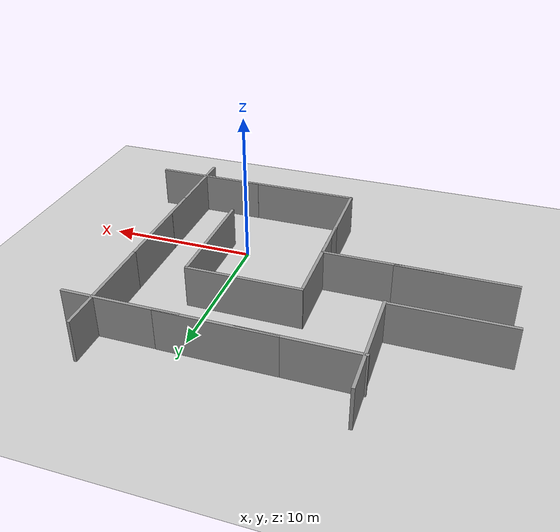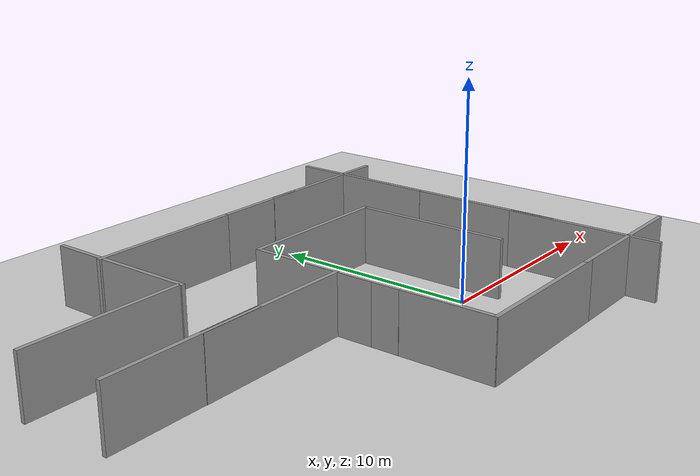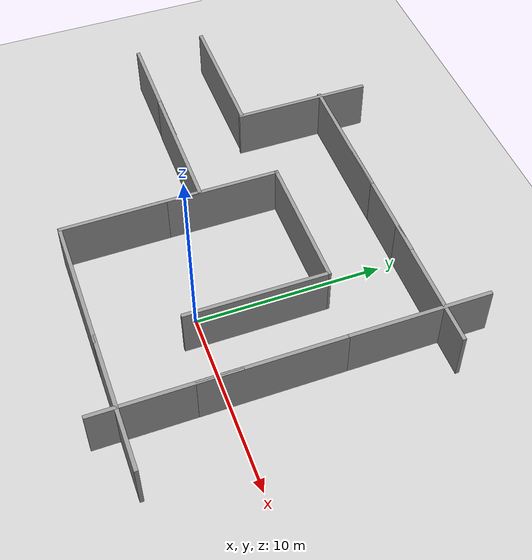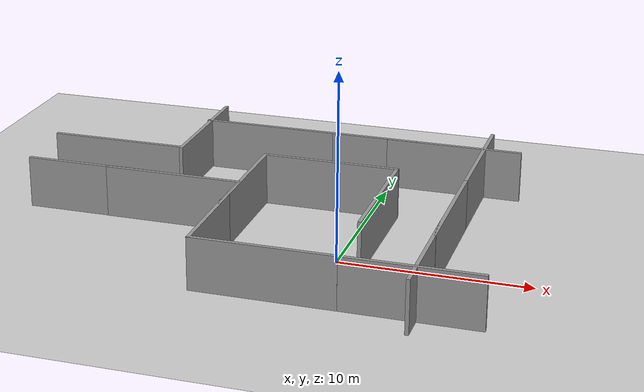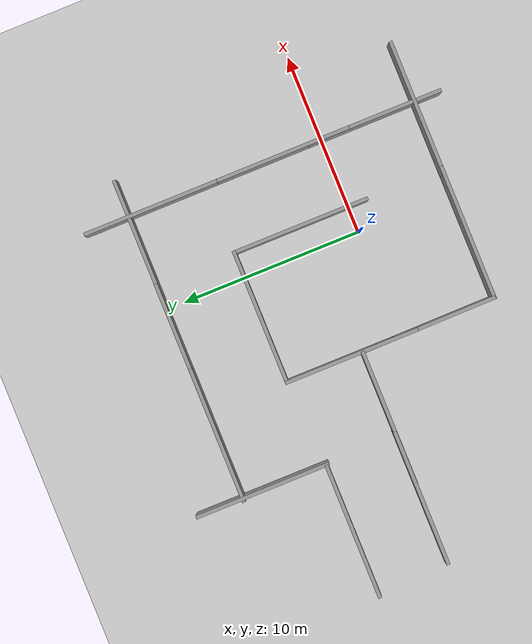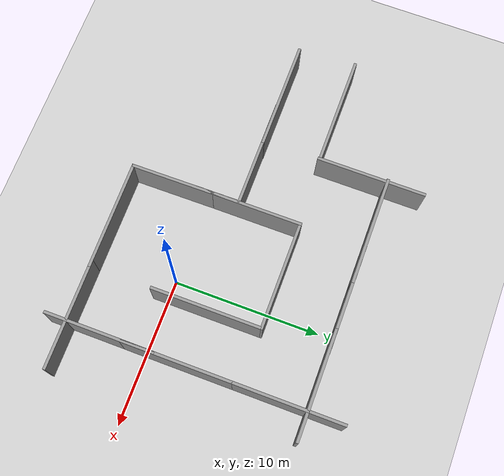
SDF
<sdf version='1.10'>
  <world name='empty'>
    <physics name='1ms' type='ignored'>
      <max_step_size>0.001</max_step_size>
      <real_time_factor>1</real_time_factor>
      <real_time_update_rate>1000</real_time_update_rate>
    </physics>
    <plugin name='gz::sim::systems::Physics' filename='gz-sim-physics-system'/>
    <plugin name='gz::sim::systems::UserCommands' filename='gz-sim-user-commands-system'/>
    <plugin name='gz::sim::systems::SceneBroadcaster' filename='gz-sim-scene-broadcaster-system'/>
    <plugin name='gz::sim::systems::Contact' filename='gz-sim-contact-system'/>
    <gravity>0 0 -9.8000000000000007</gravity>
    <magnetic_field>5.5644999999999998e-06 2.2875799999999999e-05 -4.2388400000000002e-05</magnetic_field>
    <atmosphere type='adiabatic'/>
    <scene>
      <ambient>0.400000006 0.400000006 0.400000006 1</ambient>
      <background>0.699999988 0.699999988 0.699999988 1</background>
      <shadows>true</shadows>
    </scene>
    <model name='ground_plane'>
      <static>true</static>
      <link name='link'>
        <collision name='collision'>
          <geometry>
            <plane>
              <normal>0 0 1</normal>
              <size>100 100</size>
            </plane>
          </geometry>
          <surface>
            <friction>
              <ode/>
            </friction>
            <bounce/>
            <contact/>
          </surface>
        </collision>
        <visual name='visual'>
          <geometry>
            <plane>
              <normal>0 0 1</normal>
              <size>100 100</size>
            </plane>
          </geometry>
          <material>
            <ambient>0.800000012 0.800000012 0.800000012 1</ambient>
            <diffuse>0.800000012 0.800000012 0.800000012 1</diffuse>
            <specular>0.800000012 0.800000012 0.800000012 1</specular>
          </material>
        </visual>
        <pose>0 0 0 0 0 0</pose>
        <inertial>
          <pose>0 0 0 0 0 0</pose>
          <mass>1</mass>
          <inertia>
            <ixx>1</ixx>
            <ixy>0</ixy>
            <ixz>0</ixz>
            <iyy>1</iyy>
            <iyz>0</iyz>
            <izz>1</izz>
          </inertia>
        </inertial>
        <enable_wind>false</enable_wind>
      </link>
      <pose>0 0 0 0 0 0</pose>
      <self_collide>false</self_collide>
    </model>
    <model name='grey_wall'>
      <static>true</static>
      <link name='link'>
        <pose>0 0 1.3999999999999999 0 0 0</pose>
        <collision name='collision'>
          <geometry>
            <box>
              <size>7.5 0.20000000000000001 2.7999999999999998</size>
            </box>
          </geometry>
          <surface>
            <friction>
              <ode/>
            </friction>
            <bounce/>
            <contact/>
          </surface>
        </collision>
        <visual name='visual'>
          <cast_shadows>false</cast_shadows>
          <geometry>
            <box>
              <size>7.5 0.20000000000000001 2.7999999999999998</size>
            </box>
          </geometry>
          <material>
            <script>
              <uri>file:///home/basel-atef/.gz/fuel/fuel.gazebosim.org/openrobotics/models/grey wall/3/materials/scripts</uri>
              <uri>https://fuel.gazebosim.org/1.0/openrobotics/models/grey wall/3/files/materials/textures</uri>
              <name>vrc/grey_wall</name>
            </script>
          </material>
        </visual>
        <inertial>
          <pose>0 0 0 0 0 0</pose>
          <mass>1</mass>
          <inertia>
            <ixx>1</ixx>
            <ixy>0</ixy>
            <ixz>0</ixz>
            <iyy>1</iyy>
            <iyz>0</iyz>
            <izz>1</izz>
          </inertia>
        </inertial>
        <enable_wind>false</enable_wind>
      </link>
      <pose>-14.444106204422919 6.231571497426124 0 0 0 0</pose>
      <self_collide>false</self_collide>
    </model>
    <model name='grey_wall_0'>
      <static>true</static>
      <link name='link'>
        <pose>0 0 1.3999999999999999 0 0 0</pose>
        <collision name='collision'>
          <geometry>
            <box>
              <size>7.5 0.20000000000000001 2.7999999999999998</size>
            </box>
          </geometry>
          <surface>
            <friction>
              <ode/>
            </friction>
            <bounce/>
            <contact/>
          </surface>
        </collision>
        <visual name='visual'>
          <cast_shadows>false</cast_shadows>
          <geometry>
            <box>
              <size>7.5 0.20000000000000001 2.7999999999999998</size>
            </box>
          </geometry>
          <material>
            <script>
              <uri>file:///home/basel-atef/.gz/fuel/fuel.gazebosim.org/openrobotics/models/grey wall/3/materials/scripts</uri>
              <uri>https://fuel.gazebosim.org/1.0/openrobotics/models/grey wall/3/files/materials/textures</uri>
              <name>vrc/grey_wall</name>
            </script>
          </material>
        </visual>
        <inertial>
          <pose>0 0 0 0 0 0</pose>
          <mass>1</mass>
          <inertia>
            <ixx>1</ixx>
            <ixy>0</ixy>
            <ixz>0</ixz>
            <iyy>1</iyy>
            <iyz>0</iyz>
            <izz>1</izz>
          </inertia>
        </inertial>
        <enable_wind>false</enable_wind>
      </link>
      <pose>-10.676207542419434 9.8189163208007812 0 0 0 1.5708000357176291</pose>
      <self_collide>false</self_collide>
    </model>
    <model name='grey_wall_1'>
      <static>true</static>
      <link name='link'>
        <pose>0 0 1.3999999999999999 0 0 0</pose>
        <collision name='collision'>
          <geometry>
            <box>
              <size>7.5 0.20000000000000001 2.7999999999999998</size>
            </box>
          </geometry>
          <surface>
            <friction>
              <ode/>
            </friction>
            <bounce/>
            <contact/>
          </surface>
        </collision>
        <visual name='visual'>
          <cast_shadows>false</cast_shadows>
          <geometry>
            <box>
              <size>7.5 0.20000000000000001 2.7999999999999998</size>
            </box>
          </geometry>
          <material>
            <script>
              <uri>file:///home/basel-atef/.gz/fuel/fuel.gazebosim.org/openrobotics/models/grey wall/3/materials/scripts</uri>
              <uri>https://fuel.gazebosim.org/1.0/openrobotics/models/grey wall/3/files/materials/textures</uri>
              <name>vrc/grey_wall</name>
            </script>
          </material>
        </visual>
        <inertial>
          <pose>0 0 0 0 0 0</pose>
          <mass>1</mass>
          <inertia>
            <ixx>1</ixx>
            <ixy>0</ixy>
            <ixz>0</ixz>
            <iyy>1</iyy>
            <iyz>0</iyz>
            <izz>1</izz>
          </inertia>
        </inertial>
        <enable_wind>false</enable_wind>
      </link>
      <pose>-7.1283202171325684 10.940113067626953 0 0 0 0</pose>
      <self_collide>false</self_collide>
    </model>
    <model name='grey_wall_2'>
      <static>true</static>
      <link name='link'>
        <pose>0 0 1.3999999999999999 0 0 0</pose>
        <collision name='collision'>
          <geometry>
            <box>
              <size>7.5 0.20000000000000001 2.7999999999999998</size>
            </box>
          </geometry>
          <surface>
            <friction>
              <ode/>
            </friction>
            <bounce/>
            <contact/>
          </surface>
        </collision>
        <visual name='visual'>
          <cast_shadows>false</cast_shadows>
          <geometry>
            <box>
              <size>7.5 0.20000000000000001 2.7999999999999998</size>
            </box>
          </geometry>
          <material>
            <script>
              <uri>file:///home/basel-atef/.gz/fuel/fuel.gazebosim.org/openrobotics/models/grey wall/3/materials/scripts</uri>
              <uri>https://fuel.gazebosim.org/1.0/openrobotics/models/grey wall/3/files/materials/textures</uri>
              <name>vrc/grey_wall</name>
            </script>
          </material>
        </visual>
        <inertial>
          <pose>0 0 0 0 0 0</pose>
          <mass>1</mass>
          <inertia>
            <ixx>1</ixx>
            <ixy>0</ixy>
            <ixz>0</ixz>
            <iyy>1</iyy>
            <iyz>0</iyz>
            <izz>1</izz>
          </inertia>
        </inertial>
        <enable_wind>false</enable_wind>
      </link>
      <pose>-2.3035099506378174 10.945077896118164 0 0 0 0</pose>
      <self_collide>false</self_collide>
    </model>
    <model name='grey_wall_4'>
      <static>true</static>
      <link name='link'>
        <pose>0 0 1.3999999999999999 0 0 0</pose>
        <collision name='collision'>
          <geometry>
            <box>
              <size>7.5 0.20000000000000001 2.7999999999999998</size>
            </box>
          </geometry>
          <surface>
            <friction>
              <ode/>
            </friction>
            <bounce/>
            <contact/>
          </surface>
        </collision>
        <visual name='visual'>
          <cast_shadows>false</cast_shadows>
          <geometry>
            <box>
              <size>7.5 0.20000000000000001 2.7999999999999998</size>
            </box>
          </geometry>
          <material>
            <script>
              <uri>file:///home/basel-atef/.gz/fuel/fuel.gazebosim.org/openrobotics/models/grey wall/3/materials/scripts</uri>
              <uri>https://fuel.gazebosim.org/1.0/openrobotics/models/grey wall/3/files/materials/textures</uri>
              <name>vrc/grey_wall</name>
            </script>
          </material>
        </visual>
        <inertial>
          <pose>0 0 0 0 0 0</pose>
          <mass>1</mass>
          <inertia>
            <ixx>1</ixx>
            <ixy>0</ixy>
            <ixz>0</ixz>
            <iyy>1</iyy>
            <iyz>0</iyz>
            <izz>1</izz>
          </inertia>
        </inertial>
        <enable_wind>false</enable_wind>
      </link>
      <pose>-14.169521743882141 2.2650655562892608 0 0 0 0</pose>
      <self_collide>false</self_collide>
    </model>
    <model name='grey_wall_5'>
      <static>true</static>
      <link name='link'>
        <pose>0 0 1.3999999999999999 0 0 0</pose>
        <collision name='collision'>
          <geometry>
            <box>
              <size>7.5 0.20000000000000001 2.7999999999999998</size>
            </box>
          </geometry>
          <surface>
            <friction>
              <ode/>
            </friction>
            <bounce/>
            <contact/>
          </surface>
        </collision>
        <visual name='visual'>
          <cast_shadows>false</cast_shadows>
          <geometry>
            <box>
              <size>7.5 0.20000000000000001 2.7999999999999998</size>
            </box>
          </geometry>
          <material>
            <script>
              <uri>file:///home/basel-atef/.gz/fuel/fuel.gazebosim.org/openrobotics/models/grey wall/3/materials/scripts</uri>
              <uri>https://fuel.gazebosim.org/1.0/openrobotics/models/grey wall/3/files/materials/textures</uri>
              <name>vrc/grey_wall</name>
            </script>
          </material>
        </visual>
        <inertial>
          <pose>0 0 0 0 0 0</pose>
          <mass>1</mass>
          <inertia>
            <ixx>1</ixx>
            <ixy>0</ixy>
            <ixz>0</ixz>
            <iyy>1</iyy>
            <iyz>0</iyz>
            <izz>1</izz>
          </inertia>
        </inertial>
        <enable_wind>false</enable_wind>
      </link>
      <pose>-9.6413545608520508 2.2440900802612305 0 0 0 0</pose>
      <self_collide>false</self_collide>
    </model>
    <model name='grey_wall_6'>
      <static>true</static>
      <link name='link'>
        <pose>0 0 1.3999999999999999 0 0 0</pose>
        <collision name='collision'>
          <geometry>
            <box>
              <size>7.5 0.20000000000000001 2.7999999999999998</size>
            </box>
          </geometry>
          <surface>
            <friction>
              <ode/>
            </friction>
            <bounce/>
            <contact/>
          </surface>
        </collision>
        <visual name='visual'>
          <cast_shadows>false</cast_shadows>
          <geometry>
            <box>
              <size>7.5 0.20000000000000001 2.7999999999999998</size>
            </box>
          </geometry>
          <material>
            <script>
              <uri>file:///home/basel-atef/.gz/fuel/fuel.gazebosim.org/openrobotics/models/grey wall/3/materials/scripts</uri>
              <uri>https://fuel.gazebosim.org/1.0/openrobotics/models/grey wall/3/files/materials/textures</uri>
              <name>vrc/grey_wall</name>
            </script>
          </material>
        </visual>
        <inertial>
          <pose>0 0 0 0 0 0</pose>
          <mass>1</mass>
          <inertia>
            <ixx>1</ixx>
            <ixy>0</ixy>
            <ixz>0</ixz>
            <iyy>1</iyy>
            <iyz>0</iyz>
            <izz>1</izz>
          </inertia>
        </inertial>
        <enable_wind>false</enable_wind>
      </link>
      <pose>-5.9161901473999023 2.8617498874664307 0 0 0 1.5708000357176291</pose>
      <self_collide>false</self_collide>
    </model>
    <model name='grey_wall_3'>
      <static>true</static>
      <link name='link'>
        <pose>0 0 1.3999999999999999 0 0 0</pose>
        <collision name='collision'>
          <geometry>
            <box>
              <size>7.5 0.20000000000000001 2.7999999999999998</size>
            </box>
          </geometry>
          <surface>
            <friction>
              <ode/>
            </friction>
            <bounce/>
            <contact/>
          </surface>
        </collision>
        <visual name='visual'>
          <cast_shadows>false</cast_shadows>
          <geometry>
            <box>
              <size>7.5 0.20000000000000001 2.7999999999999998</size>
            </box>
          </geometry>
          <material>
            <script>
              <uri>file:///home/basel-atef/.gz/fuel/fuel.gazebosim.org/openrobotics/models/grey wall/3/materials/scripts</uri>
              <uri>https://fuel.gazebosim.org/1.0/openrobotics/models/grey wall/3/files/materials/textures</uri>
              <name>vrc/grey_wall</name>
            </script>
          </material>
        </visual>
        <inertial>
          <pose>0 0 0 0 0 0</pose>
          <mass>1</mass>
          <inertia>
            <ixx>1</ixx>
            <ixy>0</ixy>
            <ixz>0</ixz>
            <iyy>1</iyy>
            <iyz>0</iyz>
            <izz>1</izz>
          </inertia>
        </inertial>
        <enable_wind>false</enable_wind>
      </link>
      <pose>5.2253270149230957 9.6939334869384766 0 0 0 1.5708000357176291</pose>
      <self_collide>false</self_collide>
    </model>
    <model name='grey_wall_7'>
      <static>true</static>
      <link name='link'>
        <pose>0 0 1.3999999999999999 0 0 0</pose>
        <collision name='collision'>
          <geometry>
            <box>
              <size>7.5 0.20000000000000001 2.7999999999999998</size>
            </box>
          </geometry>
          <surface>
            <friction>
              <ode/>
            </friction>
            <bounce/>
            <contact/>
          </surface>
        </collision>
        <visual name='visual'>
          <cast_shadows>false</cast_shadows>
          <geometry>
            <box>
              <size>7.5 0.20000000000000001 2.7999999999999998</size>
            </box>
          </geometry>
          <material>
            <script>
              <uri>file:///home/basel-atef/.gz/fuel/fuel.gazebosim.org/openrobotics/models/grey wall/3/materials/scripts</uri>
              <uri>https://fuel.gazebosim.org/1.0/openrobotics/models/grey wall/3/files/materials/textures</uri>
              <name>vrc/grey_wall</name>
            </script>
          </material>
        </visual>
        <inertial>
          <pose>0 0 0 0 0 0</pose>
          <mass>1</mass>
          <inertia>
            <ixx>1</ixx>
            <ixy>0</ixy>
            <ixz>0</ixz>
            <iyy>1</iyy>
            <iyz>0</iyz>
            <izz>1</izz>
          </inertia>
        </inertial>
        <enable_wind>false</enable_wind>
      </link>
      <pose>5.2270464897155762 2.2375731468200684 0 0 0 1.5708000357176291</pose>
      <self_collide>false</self_collide>
    </model>
    <model name='grey_wall_8'>
      <static>true</static>
      <link name='link'>
        <pose>0 0 1.3999999999999999 0 0 0</pose>
        <collision name='collision'>
          <geometry>
            <box>
              <size>7.5 0.20000000000000001 2.7999999999999998</size>
            </box>
          </geometry>
          <surface>
            <friction>
              <ode/>
            </friction>
            <bounce/>
            <contact/>
          </surface>
        </collision>
        <visual name='visual'>
          <cast_shadows>false</cast_shadows>
          <geometry>
            <box>
              <size>7.5 0.20000000000000001 2.7999999999999998</size>
            </box>
          </geometry>
          <material>
            <script>
              <uri>file:///home/basel-atef/.gz/fuel/fuel.gazebosim.org/openrobotics/models/grey wall/3/materials/scripts</uri>
              <uri>https://fuel.gazebosim.org/1.0/openrobotics/models/grey wall/3/files/materials/textures</uri>
              <name>vrc/grey_wall</name>
            </script>
          </material>
        </visual>
        <inertial>
          <pose>0 0 0 0 0 0</pose>
          <mass>1</mass>
          <inertia>
            <ixx>1</ixx>
            <ixy>0</ixy>
            <ixz>0</ixz>
            <iyy>1</iyy>
            <iyz>0</iyz>
            <izz>1</izz>
          </inertia>
        </inertial>
        <enable_wind>false</enable_wind>
      </link>
      <pose>3.5258300304412842 10.930383682250977 0 0 0 0</pose>
      <self_collide>false</self_collide>
    </model>
    <model name='grey_wall_9'>
      <static>true</static>
      <link name='link'>
        <pose>0 0 1.3999999999999999 0 0 0</pose>
        <collision name='collision'>
          <geometry>
            <box>
              <size>7.5 0.20000000000000001 2.7999999999999998</size>
            </box>
          </geometry>
          <surface>
            <friction>
              <ode/>
            </friction>
            <bounce/>
            <contact/>
          </surface>
        </collision>
        <visual name='visual'>
          <cast_shadows>false</cast_shadows>
          <geometry>
            <box>
              <size>7.5 0.20000000000000001 2.7999999999999998</size>
            </box>
          </geometry>
          <material>
            <script>
              <uri>file:///home/basel-atef/.gz/fuel/fuel.gazebosim.org/openrobotics/models/grey wall/3/materials/scripts</uri>
              <uri>https://fuel.gazebosim.org/1.0/openrobotics/models/grey wall/3/files/materials/textures</uri>
              <name>vrc/grey_wall</name>
            </script>
          </material>
        </visual>
        <inertial>
          <pose>0 0 0 0 0 0</pose>
          <mass>1</mass>
          <inertia>
            <ixx>1</ixx>
            <ixy>0</ixy>
            <ixz>0</ixz>
            <iyy>1</iyy>
            <iyz>0</iyz>
            <izz>1</izz>
          </inertia>
        </inertial>
        <enable_wind>false</enable_wind>
      </link>
      <pose>-2.2387049198150635 6.5147800445556641 0 0 0 0</pose>
      <self_collide>false</self_collide>
    </model>
    <model name='grey_wall_10'>
      <static>true</static>
      <link name='link'>
        <pose>0 0 1.3999999999999999 0 0 0</pose>
        <collision name='collision'>
          <geometry>
            <box>
              <size>7.5 0.20000000000000001 2.7999999999999998</size>
            </box>
          </geometry>
          <surface>
            <friction>
              <ode/>
            </friction>
            <bounce/>
            <contact/>
          </surface>
        </collision>
        <visual name='visual'>
          <cast_shadows>false</cast_shadows>
          <geometry>
            <box>
              <size>7.5 0.20000000000000001 2.7999999999999998</size>
            </box>
          </geometry>
          <material>
            <script>
              <uri>file:///home/basel-atef/.gz/fuel/fuel.gazebosim.org/openrobotics/models/grey wall/3/materials/scripts</uri>
              <uri>https://fuel.gazebosim.org/1.0/openrobotics/models/grey wall/3/files/materials/textures</uri>
              <name>vrc/grey_wall</name>
            </script>
          </material>
        </visual>
        <inertial>
          <pose>0 0 0 0 0 0</pose>
          <mass>1</mass>
          <inertia>
            <ixx>1</ixx>
            <ixy>0</ixy>
            <ixz>0</ixz>
            <iyy>1</iyy>
            <iyz>0</iyz>
            <izz>1</izz>
          </inertia>
        </inertial>
        <enable_wind>false</enable_wind>
      </link>
      <pose>1.4163899421691895 2.7230598926544189 0 0 0 1.5708000357176291</pose>
      <self_collide>false</self_collide>
    </model>
    <model name='grey_wall_11'>
      <static>true</static>
      <link name='link'>
        <pose>0 0 1.3999999999999999 0 0 0</pose>
        <collision name='collision'>
          <geometry>
            <box>
              <size>7.5 0.20000000000000001 2.7999999999999998</size>
            </box>
          </geometry>
          <surface>
            <friction>
              <ode/>
            </friction>
            <bounce/>
            <contact/>
          </surface>
        </collision>
        <visual name='visual'>
          <cast_shadows>false</cast_shadows>
          <geometry>
            <box>
              <size>7.5 0.20000000000000001 2.7999999999999998</size>
            </box>
          </geometry>
          <material>
            <script>
              <uri>file:///home/basel-atef/.gz/fuel/fuel.gazebosim.org/openrobotics/models/grey wall/3/materials/scripts</uri>
              <uri>https://fuel.gazebosim.org/1.0/openrobotics/models/grey wall/3/files/materials/textures</uri>
              <name>vrc/grey_wall</name>
            </script>
          </material>
        </visual>
        <inertial>
          <pose>0 0 0 0 0 0</pose>
          <mass>1</mass>
          <inertia>
            <ixx>1</ixx>
            <ixy>0</ixy>
            <ixz>0</ixz>
            <iyy>1</iyy>
            <iyz>0</iyz>
            <izz>1</izz>
          </inertia>
        </inertial>
        <enable_wind>false</enable_wind>
      </link>
      <pose>-5.9025163650512695 -1.5140417814254761 -2.2204500197172533e-16 0 0 1.5778000514920734</pose>
      <self_collide>false</self_collide>
    </model>
    <model name='grey_wall_12'>
      <static>true</static>
      <link name='link'>
        <pose>0 0 1.3999999999999999 0 0 0</pose>
        <collision name='collision'>
          <geometry>
            <box>
              <size>7.5 0.20000000000000001 2.7999999999999998</size>
            </box>
          </geometry>
          <surface>
            <friction>
              <ode/>
            </friction>
            <bounce/>
            <contact/>
          </surface>
        </collision>
        <visual name='visual'>
          <cast_shadows>false</cast_shadows>
          <geometry>
            <box>
              <size>7.5 0.20000000000000001 2.7999999999999998</size>
            </box>
          </geometry>
          <material>
            <script>
              <uri>file:///home/basel-atef/.gz/fuel/fuel.gazebosim.org/openrobotics/models/grey wall/3/materials/scripts</uri>
              <uri>https://fuel.gazebosim.org/1.0/openrobotics/models/grey wall/3/files/materials/textures</uri>
              <name>vrc/grey_wall</name>
            </script>
          </material>
        </visual>
        <inertial>
          <pose>0 0 0 0 0 0</pose>
          <mass>1</mass>
          <inertia>
            <ixx>1</ixx>
            <ixy>0</ixy>
            <ixz>0</ixz>
            <iyy>1</iyy>
            <iyz>0</iyz>
            <izz>1</izz>
          </inertia>
        </inertial>
        <enable_wind>false</enable_wind>
      </link>
      <pose>-2.2227855194308965 -5.2047865536027738 0 0 0 0</pose>
      <self_collide>false</self_collide>
    </model>
    <model name='grey_wall_13'>
      <static>true</static>
      <link name='link'>
        <pose>0 0 1.3999999999999999 0 0 0</pose>
        <collision name='collision'>
          <geometry>
            <box>
              <size>7.5 0.20000000000000001 2.7999999999999998</size>
            </box>
          </geometry>
          <surface>
            <friction>
              <ode/>
            </friction>
            <bounce/>
            <contact/>
          </surface>
        </collision>
        <visual name='visual'>
          <cast_shadows>false</cast_shadows>
          <geometry>
            <box>
              <size>7.5 0.20000000000000001 2.7999999999999998</size>
            </box>
          </geometry>
          <material>
            <script>
              <uri>file:///home/basel-atef/.gz/fuel/fuel.gazebosim.org/openrobotics/models/grey wall/3/materials/scripts</uri>
              <uri>https://fuel.gazebosim.org/1.0/openrobotics/models/grey wall/3/files/materials/textures</uri>
              <name>vrc/grey_wall</name>
            </script>
          </material>
        </visual>
        <inertial>
          <pose>0 0 0 0 0 0</pose>
          <mass>1</mass>
          <inertia>
            <ixx>1</ixx>
            <ixy>0</ixy>
            <ixz>0</ixz>
            <iyy>1</iyy>
            <iyz>0</iyz>
            <izz>1</izz>
          </inertia>
        </inertial>
        <enable_wind>false</enable_wind>
      </link>
      <pose>4.8187398910522461 -5.1997900009155273 0 0 0 0</pose>
      <self_collide>false</self_collide>
    </model>
    <model name='grey_wall_14'>
      <static>true</static>
      <link name='link'>
        <pose>0 0 1.3999999999999999 0 0 0</pose>
        <collision name='collision'>
          <geometry>
            <box>
              <size>7.5 0.20000000000000001 2.7999999999999998</size>
            </box>
          </geometry>
          <surface>
            <friction>
              <ode/>
            </friction>
            <bounce/>
            <contact/>
          </surface>
        </collision>
        <visual name='visual'>
          <cast_shadows>false</cast_shadows>
          <geometry>
            <box>
              <size>7.5 0.20000000000000001 2.7999999999999998</size>
            </box>
          </geometry>
          <material>
            <script>
              <uri>file:///home/basel-atef/.gz/fuel/fuel.gazebosim.org/openrobotics/models/grey wall/3/materials/scripts</uri>
              <uri>https://fuel.gazebosim.org/1.0/openrobotics/models/grey wall/3/files/materials/textures</uri>
              <name>vrc/grey_wall</name>
            </script>
          </material>
        </visual>
        <inertial>
          <pose>0 0 0 0 0 0</pose>
          <mass>1</mass>
          <inertia>
            <ixx>1</ixx>
            <ixy>0</ixy>
            <ixz>0</ixz>
            <iyy>1</iyy>
            <iyz>0</iyz>
            <izz>1</izz>
          </inertia>
        </inertial>
        <enable_wind>false</enable_wind>
      </link>
      <pose>5.2228198051452637 -2.9597499370574951 0 0 0 1.5707963267948963</pose>
      <self_collide>false</self_collide>
    </model>
    <light name='sun' type='directional'>
      <pose>0 0 10 0 0 0</pose>
      <cast_shadows>true</cast_shadows>
      <intensity>1</intensity>
      <direction>-0.5 0.10000000000000001 -0.90000000000000002</direction>
      <diffuse>0.800000012 0.800000012 0.800000012 1</diffuse>
      <specular>0.200000003 0.200000003 0.200000003 1</specular>
      <attenuation>
        <range>1000</range>
        <linear>0.01</linear>
        <constant>0.90000000000000002</constant>
        <quadratic>0.001</quadratic>
      </attenuation>
      <spot>
        <inner_angle>0</inner_angle>
        <outer_angle>0</outer_angle>
        <falloff>0</falloff>
      </spot>
    </light>
  </world>
</sdf>
